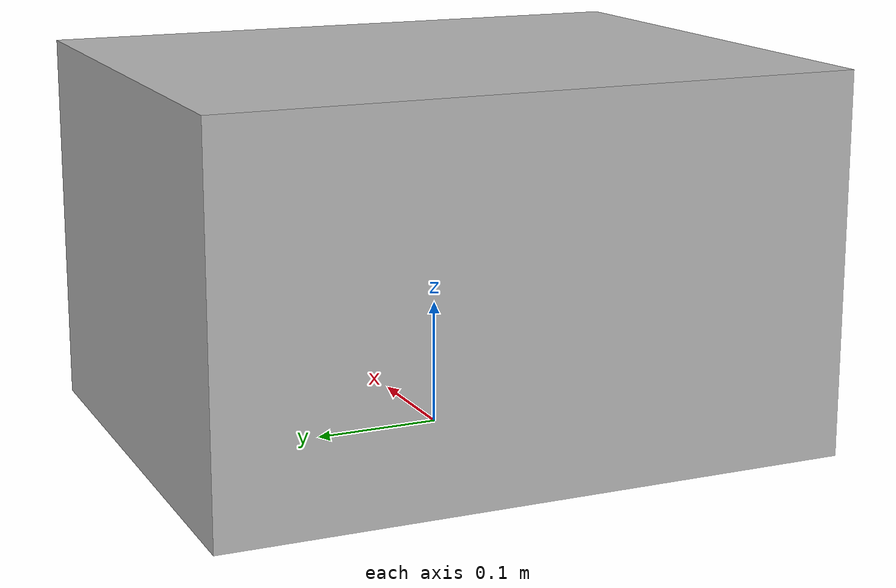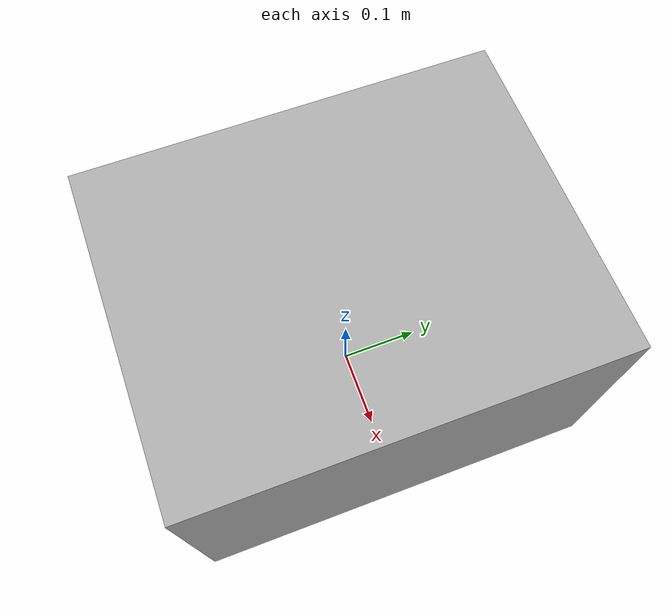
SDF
<?xml version="1.0"?>
<sdf version="1.6">
    <model name='labeled_box'>
      <pose>0 0 0.15 0 0 0</pose>
      <link name='link'>
        <inertial>
          <mass>2.0</mass>
          <inertia><ixx>0.05667</ixx><iyy>0.04167</iyy><izz>0.06833</izz><ixy>0</ixy><ixz>0</ixz><iyz>0</iyz></inertia>
        </inertial>
        <collision name='collision'>
          <geometry><box><size>0.4 0.5 0.3</size></box></geometry>
          <surface><friction><ode><mu>1.0</mu><mu2>1.0</mu2></ode></friction></surface>
        </collision>
        <visual name='visual'>
          <cast_shadows>0</cast_shadows>
          <geometry><box><size>0.4 0.5 0.3</size></box></geometry>
          <material><script>
            <uri>model://labeled_boxes/materials/scripts</uri>
            <uri>model://labeled_boxes/materials/textures</uri>
            <name>LabeledBox/A-001</name>
          </script></material>
        </visual>
      </link>
    </model>
</sdf>
